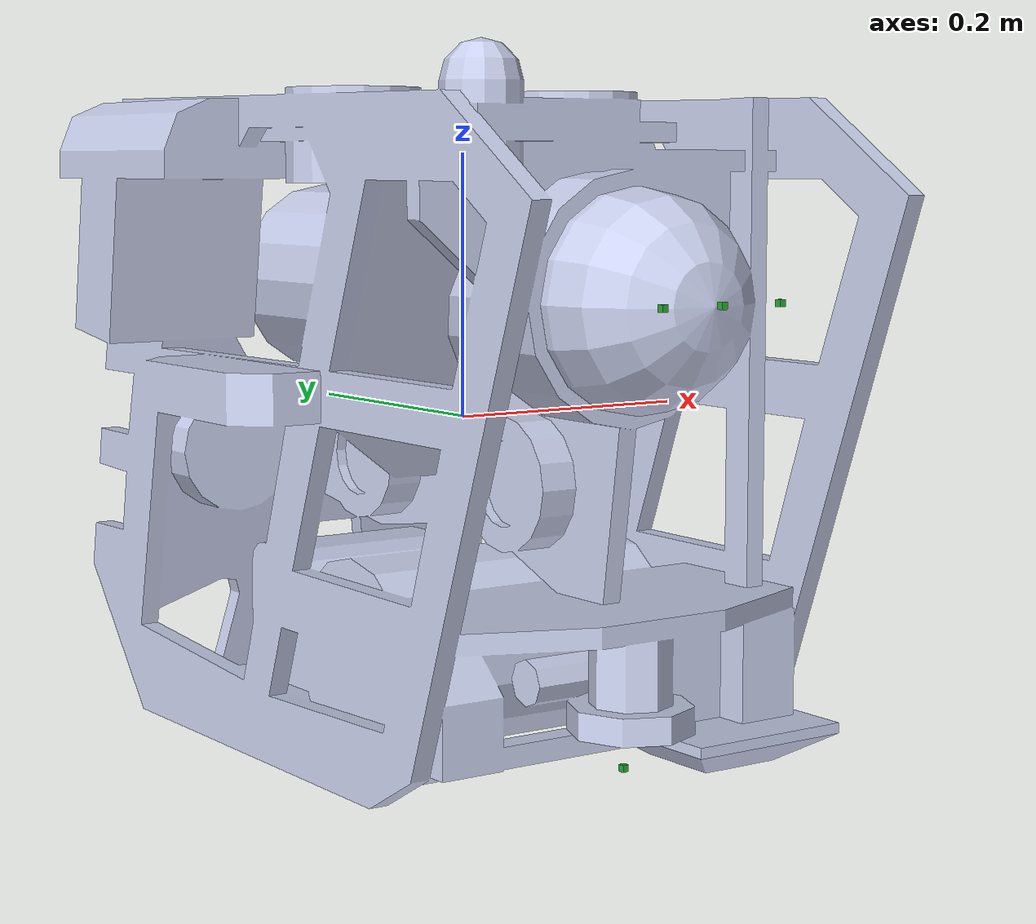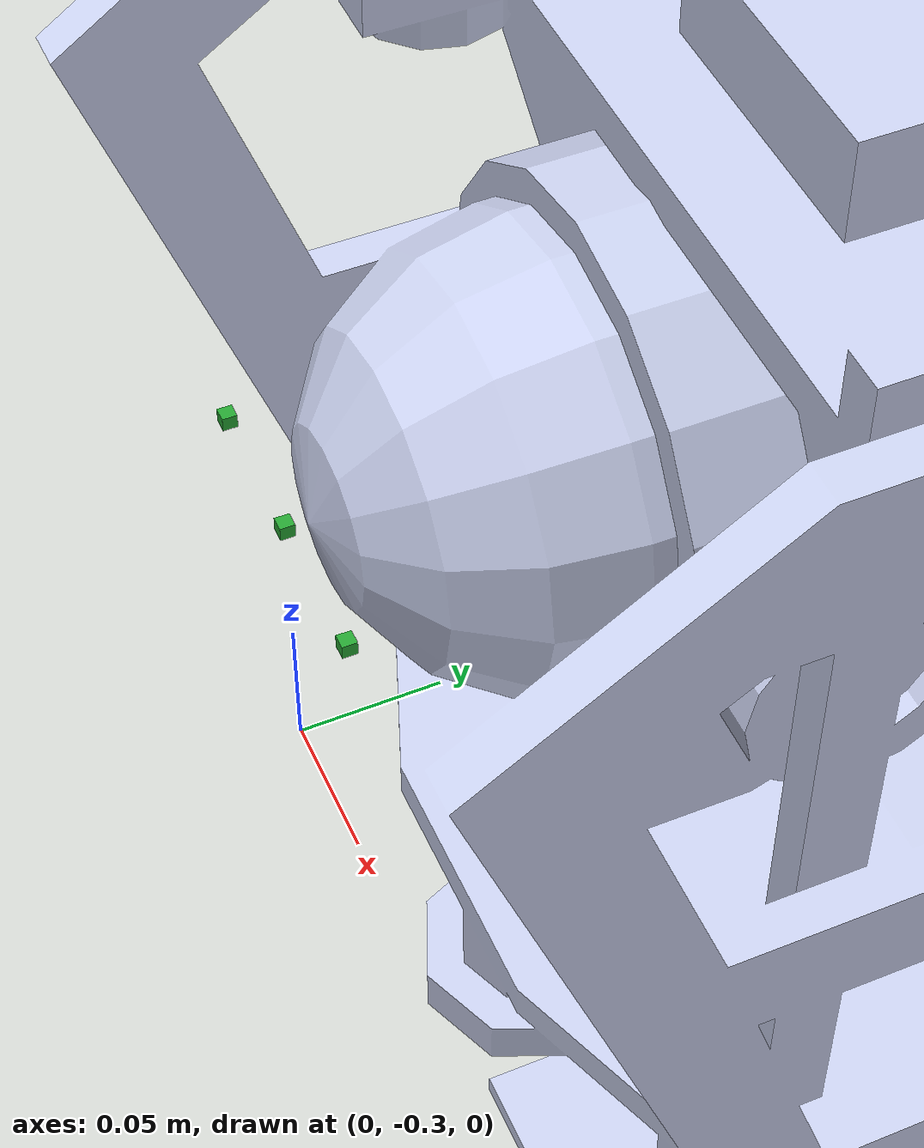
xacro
<?xml version="1.0"?>
<robot
  name="rov_model_urdf" xmlns:xacro="http://www.ros.org/wiki/xacro">

  <xacro:property name="cameraSize" value="0.005"/>
  <xacro:property name="cameraMass" value="0.01"/>

  <xacro:include filename="$(find rov_model_urdf)/urdf/materials.xacro" />
  <xacro:include filename="$(find rov_model_urdf)/urdf/rov_model_urdf.gazebo" />

  <link
    name="base_link">
    <inertial>
      <origin
        xyz="0 0 0"
        rpy="0 0 0" />
      <mass
        value="5.34818886692229" />
      <inertia
        ixx="0.121283356250234"
        ixy="0.00114080615956075"
        ixz="-3.36356954034503E-05"
        iyy="0.189191244269149"
        iyz="-6.89655590354059E-06"
        izz="0.138419224644112" />
    </inertial>
    <visual>
      <origin
              xyz="0 0.05 -0.25"
        rpy="0 0 0" />
      <geometry>
        <mesh scale="0.001 0.001 0.001"
          filename="package://rov_model_urdf/meshes/Cousteau.stl" />
      </geometry>
      <material
        name="">
        <color
          rgba="0.792156862745098 0.819607843137255 0.933333333333333 1" />
      </material>
    </visual>
    <collision>
      <origin
        xyz="0 0.05 -0.25"
        rpy="0 0 0" />
      <geometry>
        <mesh scale="0.001 0.001 0.001"
          filename="package://rov_model_urdf/meshes/Cousteau.stl" />
      </geometry>
    </collision>
  </link>

  <!--Camera front-->
  <link name="camera_front">
    <visual>
      <origin xyz="0 -0.3 0.1" rpy="0 0 0"/>
      <geometry>
        <box size="${cameraSize} ${cameraSize} ${cameraSize}"/>
      </geometry>
      <material name="green"/>
    </visual>
  </link>

  <!--Camera depth-->
  <link name="camera_depth">
    <visual>
      <origin xyz="0 -0.3 0.1" rpy="0 0 0"/>
      <geometry>
        <box size="${cameraSize} ${cameraSize} ${cameraSize}"/>
      </geometry>
      <material name="green"/>
    </visual>
  </link>

  <!--Camera front sterio-->
  <link name="camera_front_left">
    <visual>
      <origin xyz="0.05 -0.3 0.1" rpy="0 0 -1.5708"/>
      <geometry>
        <box size="${cameraSize} ${cameraSize} ${cameraSize}"/>
      </geometry>
      <material name="green"/>
    </visual>
  </link>

  <link name="camera_front_right">
    <visual>
      <origin xyz="-0.05 -0.3 0.1" rpy="0 0 -1.5708"/>
      <geometry>
        <box size="${cameraSize} ${cameraSize} ${cameraSize}"/>
      </geometry>
      <material name="green"/>
    </visual>
  </link>

  <!--Camera bottom-->
  <link name="camera_bottom">
    <visual>
      <origin xyz="0 -0.2 -0.23" rpy="0 1.5708 0"/>
      <geometry>
        <box size="${cameraSize} ${cameraSize} ${cameraSize}"/>
      </geometry>
      <material name="green"/>
    </visual>
  </link>

  <joint name="camera_joint_fl" type="fixed">
    <axis xyz="0 0 0" />
    <origin xyz="0 0 0" rpy="0 0 0"/>
    <parent link="base_link"/>
    <child link="camera_front_left"/>
  </joint>

  <joint name="camera_joint_fr" type="fixed">
    <axis xyz="0 0 0" />
    <origin xyz="0 0 0" rpy="0 0 0"/>
    <parent link="base_link"/>
    <child link="camera_front_right"/>
  </joint>

  <joint name="camera_joint_f" type="fixed">
    <axis xyz="0 0 0" />
    <origin xyz="0 0 0" rpy="0 0 0"/>
    <parent link="base_link"/>
    <child link="camera_front"/>
  </joint>

  <joint name="camera_joint_d" type="fixed">
    <axis xyz="0 0 0" />
    <origin xyz="0 0 0" rpy="0 0 0"/>
    <parent link="base_link"/>
    <child link="camera_depth"/>
  </joint>

  <joint name="camera_joint_b" type="fixed">
    <axis xyz="0 0 0" />
    <origin xyz="0 0 0" rpy="0 0 0"/>
    <parent link="base_link"/>
    <child link="camera_bottom"/>
  </joint>

</robot>
